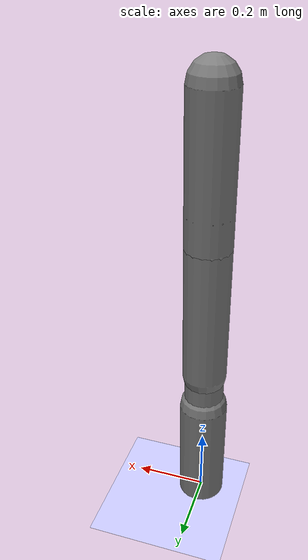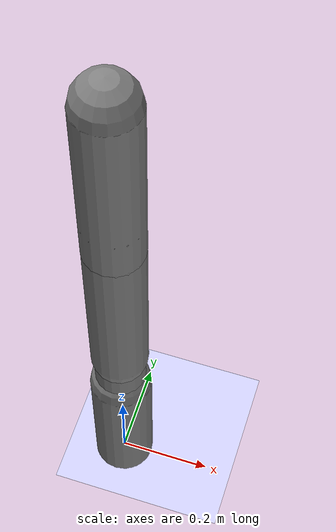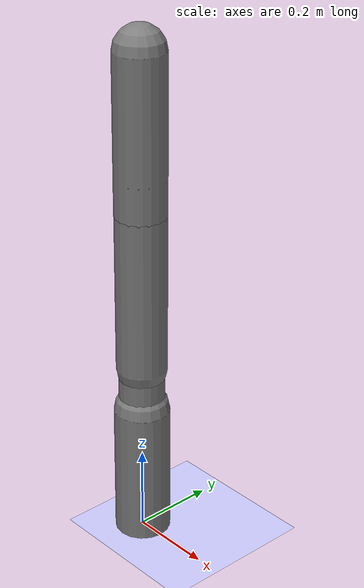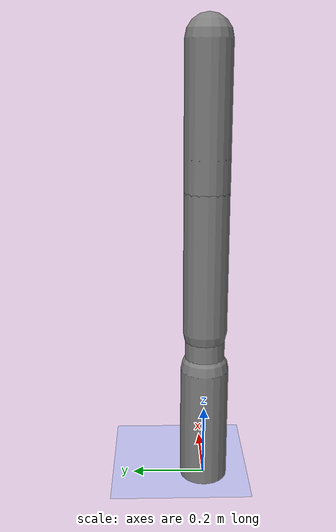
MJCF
<?xml version='1.0' encoding='UTF-8'?>
<mujoco model="robot_model">
  <worldbody>
    <light name="light" pos="0 -3 10" dir="0 0.5 -1" diffuse=".8 .8 .8" specular="0.1 0.1 0.1"/>
    <geom name="floor" type="plane" size="10.0 10.0 0.1" pos="0 0 0" rgba="0.8 0.8 1 1"/>
    <body name="limb0" pos="0 0 0">
      <geom type="capsule" fromto="0 0 0 0 0 0.32526143925318585" size="0.0660819209410743" density="1015.5829115852889"/>
      <site type="sphere" size="0.01" name="limb0_site0" pos="0 0 0.2685603036630171"/>
      <site type="sphere" size="0.01" name="limb0_site1" pos="0 0 0.05653960291135803"/>
      <freejoint name="limb0_root"/>
      <body name="limb1" pos="0 0 0.2685603036630171">
        <geom type="capsule" fromto="0 0 0 0 0 0.3600789675341075" size="0.05407429494422454" density="619.3655655626594"/>
        <site type="sphere" size="0.01" name="limb1_site0" pos="0 0 0.14348370626259008"/>
        <body name="limb2" pos="0 0 0.14348370626259008">
          <geom type="capsule" fromto="0 0 0 0 0 0.1151360005995388" size="0.05118386231655428" density="1068.8503152880464"/>
          <site type="sphere" size="0.01" name="limb2_site0" pos="0 0 0.09883774296022671"/>
          <body name="limb3" pos="0 0 0.09883774296022671">
            <geom type="capsule" fromto="0 0 0 0 0 0.3246346816300574" size="0.027985800535247497" density="877.8764988614424"/>
            <site type="sphere" size="0.01" name="limb3_site0" pos="0 0 0.30592291138675143"/>
            <body name="limb4" pos="0 0 0.30592291138675143">
              <geom type="capsule" fromto="0 0 0 0 0 0.36951162147997846" size="0.06" density="1109.9477975887687"/>
              <joint name="joint_limb3_limb4_0" type="hinge" axis="0 0 1" range="-32.23675465955068 32.23675465955068" damping="5.0"/>
            </body>
            <joint name="joint_limb2_limb3_0" type="hinge" axis="1 0 0" range="-102.98912811609488 102.98912811609488" damping="5.0"/>
          </body>
          <joint name="joint_limb1_limb2_0" type="hinge" axis="1 0 0" range="-76.76461954822437 76.76461954822437" damping="5.0"/>
        </body>
        <joint name="joint_limb0_limb1_0" type="hinge" axis="0 0 1" range="-104.57342983206668 104.57342983206668" damping="5.0"/>
      </body>
      <body name="limb5" pos="0 0 0.05653960291135803">
        <geom type="capsule" fromto="0 0 0 0 0 0.20848267310478638" size="0.044649670011882046" density="708.121859381018"/>
        <site type="sphere" size="0.01" name="limb5_site0" pos="0 0 0.03808324873440217"/>
        <site type="sphere" size="0.01" name="limb5_site1" pos="0 0 0.17039754824855607"/>
        <body name="limb6" pos="0 0 0.03808324873440217">
          <geom type="capsule" fromto="0 0 0 0 0 0.49506834786402915" size="0.03678532303791788" density="732.350866634508"/>
          <site type="sphere" size="0.01" name="limb6_site0" pos="0 0 0.48864896668293684"/>
          <body name="limb7" pos="0 0 0.48864896668293684">
            <geom type="capsule" fromto="0 0 0 0 0 0.11227888761308047" size="0.05353140952633368" density="400.0"/>
            <joint name="joint_limb6_limb7_0" type="hinge" axis="0 1 0" range="-101.73901430779064 101.73901430779064" damping="5.0"/>
          </body>
          <joint name="joint_limb5_limb6_0" type="hinge" axis="0 0 1" range="-98.208106043741 98.208106043741" damping="5.0"/>
        </body>
        <body name="limb8" pos="0 0 0.17039754824855607">
          <geom type="capsule" fromto="0 0 0 0 0 0.254548635726472" size="0.05094056584439361" density="546.0033463063359"/>
          <site type="sphere" size="0.01" name="limb8_site0" pos="0 0 0.20730805101743352"/>
          <body name="limb9" pos="0 0 0.20730805101743352">
            <geom type="capsule" fromto="0 0 0 0 0 0.4676759956951593" size="0.05966738873335552" density="631.8729198528299"/>
            <joint name="joint_limb8_limb9_0" type="hinge" axis="1 0 0" range="-120.0 120.0" damping="5.0"/>
          </body>
          <joint name="joint_limb5_limb8_0" type="hinge" axis="1 0 0" range="-53.30102500458968 53.30102500458968" damping="5.0"/>
        </body>
        <joint name="joint_limb0_limb5_0" type="hinge" axis="0 0 1" range="-96.21716630603876 96.21716630603876" damping="5.0"/>
      </body>
    </body>
  </worldbody>
  <actuator>
    <position name="position_actuator_joint_limb0_limb1_0" joint="joint_limb0_limb1_0" gear="1.3405511740366276" inheritrange="1" kp="10.0"/>
    <position name="position_actuator_joint_limb1_limb2_0" joint="joint_limb1_limb2_0" gear="2.0" inheritrange="1" kp="10.0"/>
    <position name="position_actuator_joint_limb2_limb3_0" joint="joint_limb2_limb3_0" gear="1.285844846340357" inheritrange="1" kp="10.0"/>
    <position name="position_actuator_joint_limb3_limb4_0" joint="joint_limb3_limb4_0" gear="0.6866428973515241" inheritrange="1" kp="10.0"/>
    <position name="position_actuator_joint_limb0_limb5_0" joint="joint_limb0_limb5_0" gear="1.7817465554683207" inheritrange="1" kp="10.0"/>
    <position name="position_actuator_joint_limb5_limb6_0" joint="joint_limb5_limb6_0" gear="0.9075785035297382" inheritrange="1" kp="10.0"/>
    <position name="position_actuator_joint_limb6_limb7_0" joint="joint_limb6_limb7_0" gear="0.6855578824392156" inheritrange="1" kp="10.0"/>
    <position name="position_actuator_joint_limb5_limb8_0" joint="joint_limb5_limb8_0" gear="0.6968377142661952" inheritrange="1" kp="10.0"/>
    <position name="position_actuator_joint_limb8_limb9_0" joint="joint_limb8_limb9_0" gear="1.8233737295725532" inheritrange="1" kp="10.0"/>
  </actuator>
</mujoco>
